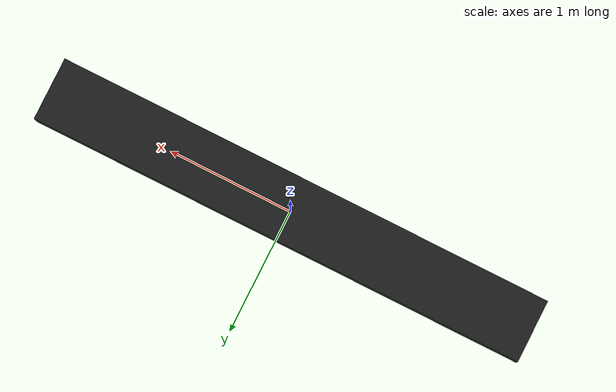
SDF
<sdf version='1.6'>
  <model name='conveyor_belt'>
    <link name='base_link'>
      <pose frame=''>0 0 0 0 -0 0</pose>
      <inertial>
        <pose frame=''>0 0 0.1 0 -0 0</pose>
        <mass>1</mass>
        <inertia>
          <ixx>1</ixx>
          <ixy>0</ixy>
          <ixz>0</ixz>
          <iyy>1</iyy>
          <iyz>0</iyz>
          <izz>1</izz>
        </inertia>
      </inertial>
      <collision name='base_link_collision'>
        <pose frame=''>0 0 0.1 0 -0 0</pose>
        <geometry>
          <box>
            <size>4 0.5 0.2</size>
          </box>
        </geometry>
        <surface>
          <contact>
            <ode/>
          </contact>
          <friction>
            <ode>
              <mu>0</mu>
              <mu2>0</mu2>
            </ode>
          </friction>
        </surface>
      </collision>
      <visual name='base_link_visual'>
        <pose frame=''>0 0 0.1 0 -0 0</pose>
        <geometry>
          <box>
            <size>4 0.5 0.2</size>
          </box>
        </geometry>
        <material>
          <script>
            <name>Gazebo/FlatBlack</name>
            <uri>model://4230_objects/materials/scripts</uri>
            <uri>model://4230_objects/materials/textures</uri>
          </script>
        </material>
      </visual>
      <gravity>1</gravity>
      <velocity_decay/>
      <self_collide>0</self_collide>
    </link>
    <joint name='joint_fix' type='revolute'>
      <child>base_link</child>
      <parent>world</parent>
      <axis>
        <limit>
          <lower>0</lower>
          <upper>0</upper>
        </limit>
        <dynamics>
          <damping>0</damping>
          <friction>0</friction>
          <spring_reference>0</spring_reference>
          <spring_stiffness>0</spring_stiffness>
        </dynamics>
        <use_parent_model_frame>1</use_parent_model_frame>
        <xyz>0 0 1</xyz>
      </axis>
    </joint>
  </model>
</sdf>
